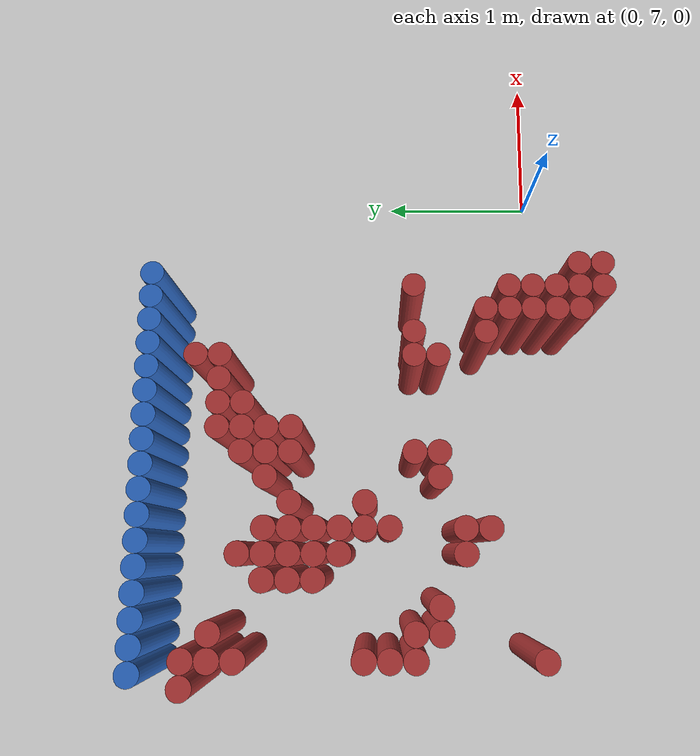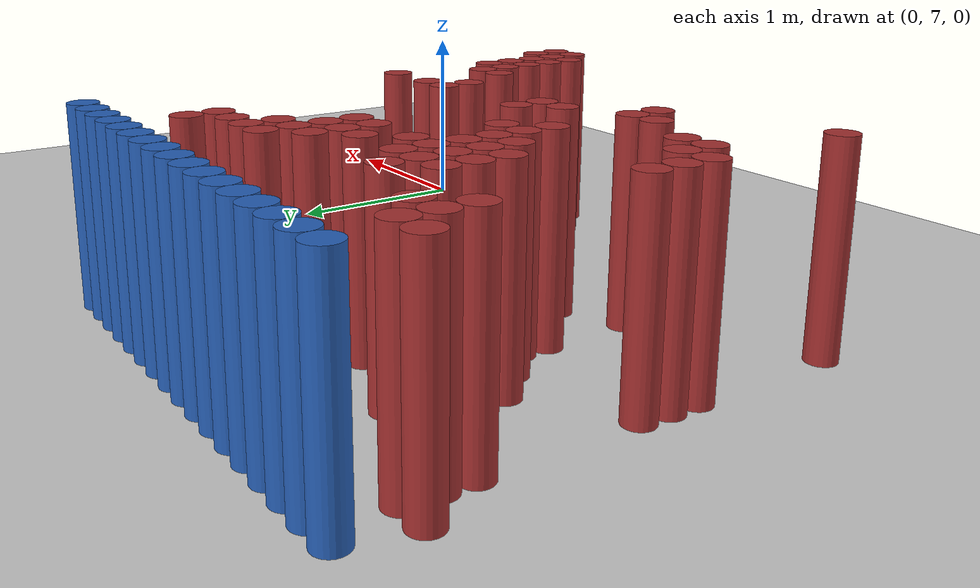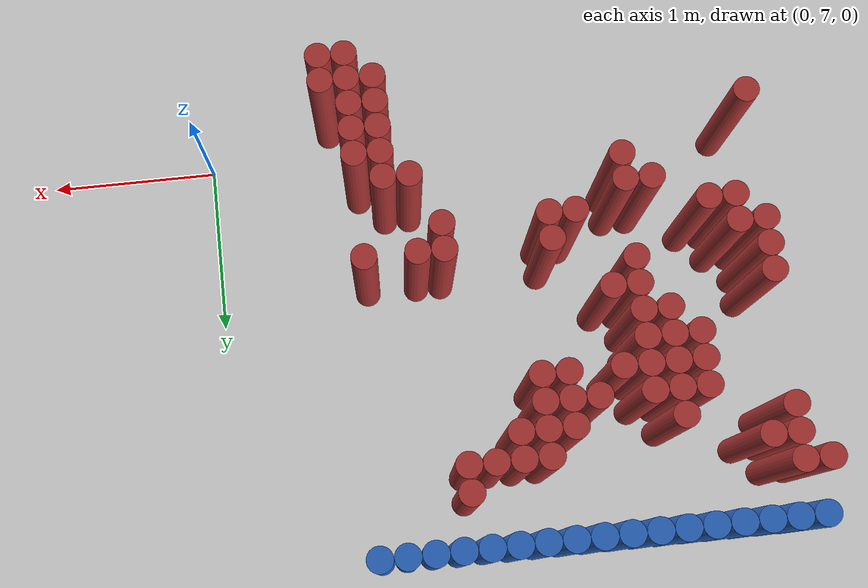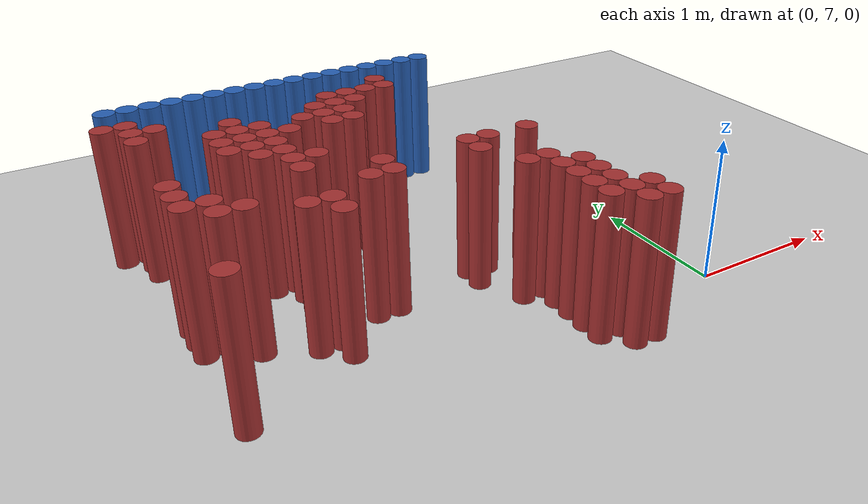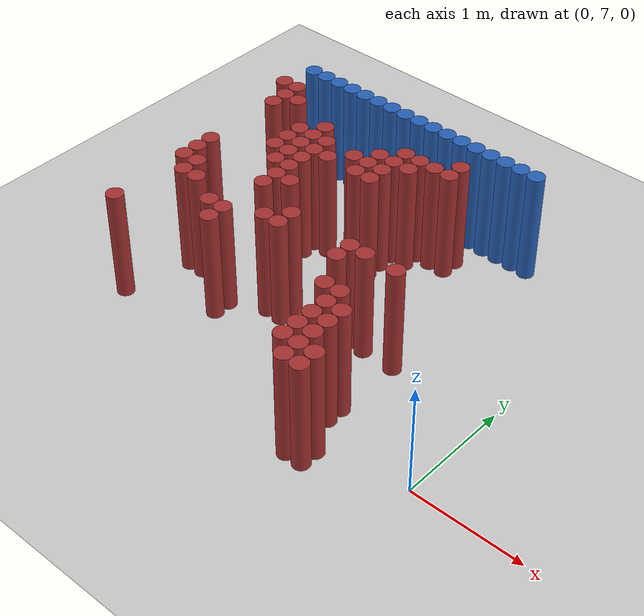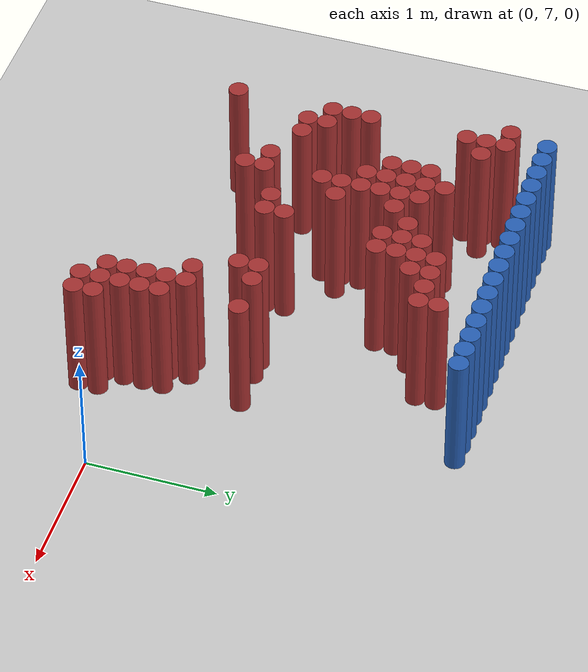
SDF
<sdf version="1.6">
 <world name="barn_world">
  <model name="ground_plane">
   <static>1</static>
   <link name="link">
    <collision name="collision">
     <geometry><plane><normal>0 0 1</normal><size>100 100</size></plane></geometry>
    </collision>
    <visual name="visual">
     <geometry><plane><normal>0 0 1</normal><size>100 100</size></plane></geometry>
     <material>
      <script><uri>file://media/materials/scripts/gazebo.material</uri><name>Gazebo/Grey</name></script>
     </material>
    </visual>
   </link>
  </model>
  <model name="unit_cylinder_218">
   <static>1</static>
   <pose>-3.3000 9.2250 0.5 0 0 0</pose>
   <link name="link">
    <collision name="collision">
     <geometry><cylinder><radius>0.075</radius><length>1</length></cylinder></geometry>
    </collision>
    <visual name="visual">
     <geometry><cylinder><radius>0.075</radius><length>1</length></cylinder></geometry>
     <material><ambient>0.648 0.192 0.192 1</ambient><diffuse>0.648 0.192 0.192 1</diffuse></material>
    </visual>
   </link>
  </model>
  <model name="unit_cylinder_219">
   <static>1</static>
   <pose>-3.1500 7.1250 0.5 0 0 0</pose>
   <link name="link">
    <collision name="collision">
     <geometry><cylinder><radius>0.075</radius><length>1</length></cylinder></geometry>
    </collision>
    <visual name="visual">
     <geometry><cylinder><radius>0.075</radius><length>1</length></cylinder></geometry>
     <material><ambient>0.648 0.192 0.192 1</ambient><diffuse>0.648 0.192 0.192 1</diffuse></material>
    </visual>
   </link>
  </model>
  <model name="unit_cylinder_220">
   <static>1</static>
   <pose>-3.1500 7.8750 0.5 0 0 0</pose>
   <link name="link">
    <collision name="collision">
     <geometry><cylinder><radius>0.075</radius><length>1</length></cylinder></geometry>
    </collision>
    <visual name="visual">
     <geometry><cylinder><radius>0.075</radius><length>1</length></cylinder></geometry>
     <material><ambient>0.648 0.192 0.192 1</ambient><diffuse>0.648 0.192 0.192 1</diffuse></material>
    </visual>
   </link>
  </model>
  <model name="unit_cylinder_221">
   <static>1</static>
   <pose>-3.1500 8.0250 0.5 0 0 0</pose>
   <link name="link">
    <collision name="collision">
     <geometry><cylinder><radius>0.075</radius><length>1</length></cylinder></geometry>
    </collision>
    <visual name="visual">
     <geometry><cylinder><radius>0.075</radius><length>1</length></cylinder></geometry>
     <material><ambient>0.648 0.192 0.192 1</ambient><diffuse>0.648 0.192 0.192 1</diffuse></material>
    </visual>
   </link>
  </model>
  <model name="unit_cylinder_222">
   <static>1</static>
   <pose>-3.1500 8.1750 0.5 0 0 0</pose>
   <link name="link">
    <collision name="collision">
     <geometry><cylinder><radius>0.075</radius><length>1</length></cylinder></geometry>
    </collision>
    <visual name="visual">
     <geometry><cylinder><radius>0.075</radius><length>1</length></cylinder></geometry>
     <material><ambient>0.648 0.192 0.192 1</ambient><diffuse>0.648 0.192 0.192 1</diffuse></material>
    </visual>
   </link>
  </model>
  <model name="unit_cylinder_223">
   <static>1</static>
   <pose>-3.1500 8.9250 0.5 0 0 0</pose>
   <link name="link">
    <collision name="collision">
     <geometry><cylinder><radius>0.075</radius><length>1</length></cylinder></geometry>
    </collision>
    <visual name="visual">
     <geometry><cylinder><radius>0.075</radius><length>1</length></cylinder></geometry>
     <material><ambient>0.648 0.192 0.192 1</ambient><diffuse>0.648 0.192 0.192 1</diffuse></material>
    </visual>
   </link>
  </model>
  <model name="unit_cylinder_224">
   <static>1</static>
   <pose>-3.1500 9.0750 0.5 0 0 0</pose>
   <link name="link">
    <collision name="collision">
     <geometry><cylinder><radius>0.075</radius><length>1</length></cylinder></geometry>
    </collision>
    <visual name="visual">
     <geometry><cylinder><radius>0.075</radius><length>1</length></cylinder></geometry>
     <material><ambient>0.648 0.192 0.192 1</ambient><diffuse>0.648 0.192 0.192 1</diffuse></material>
    </visual>
   </link>
  </model>
  <model name="unit_cylinder_225">
   <static>1</static>
   <pose>-3.1500 9.2250 0.5 0 0 0</pose>
   <link name="link">
    <collision name="collision">
     <geometry><cylinder><radius>0.075</radius><length>1</length></cylinder></geometry>
    </collision>
    <visual name="visual">
     <geometry><cylinder><radius>0.075</radius><length>1</length></cylinder></geometry>
     <material><ambient>0.648 0.192 0.192 1</ambient><diffuse>0.648 0.192 0.192 1</diffuse></material>
    </visual>
   </link>
  </model>
  <model name="unit_cylinder_229">
   <static>1</static>
   <pose>-3.0000 7.7250 0.5 0 0 0</pose>
   <link name="link">
    <collision name="collision">
     <geometry><cylinder><radius>0.075</radius><length>1</length></cylinder></geometry>
    </collision>
    <visual name="visual">
     <geometry><cylinder><radius>0.075</radius><length>1</length></cylinder></geometry>
     <material><ambient>0.648 0.192 0.192 1</ambient><diffuse>0.648 0.192 0.192 1</diffuse></material>
    </visual>
   </link>
  </model>
  <model name="unit_cylinder_230">
   <static>1</static>
   <pose>-3.0000 7.8750 0.5 0 0 0</pose>
   <link name="link">
    <collision name="collision">
     <geometry><cylinder><radius>0.075</radius><length>1</length></cylinder></geometry>
    </collision>
    <visual name="visual">
     <geometry><cylinder><radius>0.075</radius><length>1</length></cylinder></geometry>
     <material><ambient>0.648 0.192 0.192 1</ambient><diffuse>0.648 0.192 0.192 1</diffuse></material>
    </visual>
   </link>
  </model>
  <model name="unit_cylinder_231">
   <static>1</static>
   <pose>-3.0000 9.0750 0.5 0 0 0</pose>
   <link name="link">
    <collision name="collision">
     <geometry><cylinder><radius>0.075</radius><length>1</length></cylinder></geometry>
    </collision>
    <visual name="visual">
     <geometry><cylinder><radius>0.075</radius><length>1</length></cylinder></geometry>
     <material><ambient>0.648 0.192 0.192 1</ambient><diffuse>0.648 0.192 0.192 1</diffuse></material>
    </visual>
   </link>
  </model>
  <model name="unit_cylinder_237">
   <static>1</static>
   <pose>-2.8500 7.7250 0.5 0 0 0</pose>
   <link name="link">
    <collision name="collision">
     <geometry><cylinder><radius>0.075</radius><length>1</length></cylinder></geometry>
    </collision>
    <visual name="visual">
     <geometry><cylinder><radius>0.075</radius><length>1</length></cylinder></geometry>
     <material><ambient>0.648 0.192 0.192 1</ambient><diffuse>0.648 0.192 0.192 1</diffuse></material>
    </visual>
   </link>
  </model>
  <model name="unit_cylinder_242">
   <static>1</static>
   <pose>-2.7000 8.4750 0.5 0 0 0</pose>
   <link name="link">
    <collision name="collision">
     <geometry><cylinder><radius>0.075</radius><length>1</length></cylinder></geometry>
    </collision>
    <visual name="visual">
     <geometry><cylinder><radius>0.075</radius><length>1</length></cylinder></geometry>
     <material><ambient>0.648 0.192 0.192 1</ambient><diffuse>0.648 0.192 0.192 1</diffuse></material>
    </visual>
   </link>
  </model>
  <model name="unit_cylinder_243">
   <static>1</static>
   <pose>-2.7000 8.6250 0.5 0 0 0</pose>
   <link name="link">
    <collision name="collision">
     <geometry><cylinder><radius>0.075</radius><length>1</length></cylinder></geometry>
    </collision>
    <visual name="visual">
     <geometry><cylinder><radius>0.075</radius><length>1</length></cylinder></geometry>
     <material><ambient>0.648 0.192 0.192 1</ambient><diffuse>0.648 0.192 0.192 1</diffuse></material>
    </visual>
   </link>
  </model>
  <model name="unit_cylinder_244">
   <static>1</static>
   <pose>-2.7000 8.7750 0.5 0 0 0</pose>
   <link name="link">
    <collision name="collision">
     <geometry><cylinder><radius>0.075</radius><length>1</length></cylinder></geometry>
    </collision>
    <visual name="visual">
     <geometry><cylinder><radius>0.075</radius><length>1</length></cylinder></geometry>
     <material><ambient>0.648 0.192 0.192 1</ambient><diffuse>0.648 0.192 0.192 1</diffuse></material>
    </visual>
   </link>
  </model>
  <model name="unit_cylinder_248">
   <static>1</static>
   <pose>-2.5500 7.5750 0.5 0 0 0</pose>
   <link name="link">
    <collision name="collision">
     <geometry><cylinder><radius>0.075</radius><length>1</length></cylinder></geometry>
    </collision>
    <visual name="visual">
     <geometry><cylinder><radius>0.075</radius><length>1</length></cylinder></geometry>
     <material><ambient>0.648 0.192 0.192 1</ambient><diffuse>0.648 0.192 0.192 1</diffuse></material>
    </visual>
   </link>
  </model>
  <model name="unit_cylinder_249">
   <static>1</static>
   <pose>-2.5500 8.3250 0.5 0 0 0</pose>
   <link name="link">
    <collision name="collision">
     <geometry><cylinder><radius>0.075</radius><length>1</length></cylinder></geometry>
    </collision>
    <visual name="visual">
     <geometry><cylinder><radius>0.075</radius><length>1</length></cylinder></geometry>
     <material><ambient>0.648 0.192 0.192 1</ambient><diffuse>0.648 0.192 0.192 1</diffuse></material>
    </visual>
   </link>
  </model>
  <model name="unit_cylinder_250">
   <static>1</static>
   <pose>-2.5500 8.4750 0.5 0 0 0</pose>
   <link name="link">
    <collision name="collision">
     <geometry><cylinder><radius>0.075</radius><length>1</length></cylinder></geometry>
    </collision>
    <visual name="visual">
     <geometry><cylinder><radius>0.075</radius><length>1</length></cylinder></geometry>
     <material><ambient>0.648 0.192 0.192 1</ambient><diffuse>0.648 0.192 0.192 1</diffuse></material>
    </visual>
   </link>
  </model>
  <model name="unit_cylinder_251">
   <static>1</static>
   <pose>-2.5500 8.6250 0.5 0 0 0</pose>
   <link name="link">
    <collision name="collision">
     <geometry><cylinder><radius>0.075</radius><length>1</length></cylinder></geometry>
    </collision>
    <visual name="visual">
     <geometry><cylinder><radius>0.075</radius><length>1</length></cylinder></geometry>
     <material><ambient>0.648 0.192 0.192 1</ambient><diffuse>0.648 0.192 0.192 1</diffuse></material>
    </visual>
   </link>
  </model>
  <model name="unit_cylinder_252">
   <static>1</static>
   <pose>-2.5500 8.7750 0.5 0 0 0</pose>
   <link name="link">
    <collision name="collision">
     <geometry><cylinder><radius>0.075</radius><length>1</length></cylinder></geometry>
    </collision>
    <visual name="visual">
     <geometry><cylinder><radius>0.075</radius><length>1</length></cylinder></geometry>
     <material><ambient>0.648 0.192 0.192 1</ambient><diffuse>0.648 0.192 0.192 1</diffuse></material>
    </visual>
   </link>
  </model>
  <model name="unit_cylinder_253">
   <static>1</static>
   <pose>-2.5500 8.9250 0.5 0 0 0</pose>
   <link name="link">
    <collision name="collision">
     <geometry><cylinder><radius>0.075</radius><length>1</length></cylinder></geometry>
    </collision>
    <visual name="visual">
     <geometry><cylinder><radius>0.075</radius><length>1</length></cylinder></geometry>
     <material><ambient>0.648 0.192 0.192 1</ambient><diffuse>0.648 0.192 0.192 1</diffuse></material>
    </visual>
   </link>
  </model>
  <model name="unit_cylinder_256">
   <static>1</static>
   <pose>-2.4000 7.4250 0.5 0 0 0</pose>
   <link name="link">
    <collision name="collision">
     <geometry><cylinder><radius>0.075</radius><length>1</length></cylinder></geometry>
    </collision>
    <visual name="visual">
     <geometry><cylinder><radius>0.075</radius><length>1</length></cylinder></geometry>
     <material><ambient>0.648 0.192 0.192 1</ambient><diffuse>0.648 0.192 0.192 1</diffuse></material>
    </visual>
   </link>
  </model>
  <model name="unit_cylinder_257">
   <static>1</static>
   <pose>-2.4000 7.5750 0.5 0 0 0</pose>
   <link name="link">
    <collision name="collision">
     <geometry><cylinder><radius>0.075</radius><length>1</length></cylinder></geometry>
    </collision>
    <visual name="visual">
     <geometry><cylinder><radius>0.075</radius><length>1</length></cylinder></geometry>
     <material><ambient>0.648 0.192 0.192 1</ambient><diffuse>0.648 0.192 0.192 1</diffuse></material>
    </visual>
   </link>
  </model>
  <model name="unit_cylinder_258">
   <static>1</static>
   <pose>-2.4000 8.0250 0.5 0 0 0</pose>
   <link name="link">
    <collision name="collision">
     <geometry><cylinder><radius>0.075</radius><length>1</length></cylinder></geometry>
    </collision>
    <visual name="visual">
     <geometry><cylinder><radius>0.075</radius><length>1</length></cylinder></geometry>
     <material><ambient>0.648 0.192 0.192 1</ambient><diffuse>0.648 0.192 0.192 1</diffuse></material>
    </visual>
   </link>
  </model>
  <model name="unit_cylinder_259">
   <static>1</static>
   <pose>-2.4000 8.1750 0.5 0 0 0</pose>
   <link name="link">
    <collision name="collision">
     <geometry><cylinder><radius>0.075</radius><length>1</length></cylinder></geometry>
    </collision>
    <visual name="visual">
     <geometry><cylinder><radius>0.075</radius><length>1</length></cylinder></geometry>
     <material><ambient>0.648 0.192 0.192 1</ambient><diffuse>0.648 0.192 0.192 1</diffuse></material>
    </visual>
   </link>
  </model>
  <model name="unit_cylinder_260">
   <static>1</static>
   <pose>-2.4000 8.3250 0.5 0 0 0</pose>
   <link name="link">
    <collision name="collision">
     <geometry><cylinder><radius>0.075</radius><length>1</length></cylinder></geometry>
    </collision>
    <visual name="visual">
     <geometry><cylinder><radius>0.075</radius><length>1</length></cylinder></geometry>
     <material><ambient>0.648 0.192 0.192 1</ambient><diffuse>0.648 0.192 0.192 1</diffuse></material>
    </visual>
   </link>
  </model>
  <model name="unit_cylinder_261">
   <static>1</static>
   <pose>-2.4000 8.4750 0.5 0 0 0</pose>
   <link name="link">
    <collision name="collision">
     <geometry><cylinder><radius>0.075</radius><length>1</length></cylinder></geometry>
    </collision>
    <visual name="visual">
     <geometry><cylinder><radius>0.075</radius><length>1</length></cylinder></geometry>
     <material><ambient>0.648 0.192 0.192 1</ambient><diffuse>0.648 0.192 0.192 1</diffuse></material>
    </visual>
   </link>
  </model>
  <model name="unit_cylinder_262">
   <static>1</static>
   <pose>-2.4000 8.6250 0.5 0 0 0</pose>
   <link name="link">
    <collision name="collision">
     <geometry><cylinder><radius>0.075</radius><length>1</length></cylinder></geometry>
    </collision>
    <visual name="visual">
     <geometry><cylinder><radius>0.075</radius><length>1</length></cylinder></geometry>
     <material><ambient>0.648 0.192 0.192 1</ambient><diffuse>0.648 0.192 0.192 1</diffuse></material>
    </visual>
   </link>
  </model>
  <model name="unit_cylinder_263">
   <static>1</static>
   <pose>-2.4000 8.7750 0.5 0 0 0</pose>
   <link name="link">
    <collision name="collision">
     <geometry><cylinder><radius>0.075</radius><length>1</length></cylinder></geometry>
    </collision>
    <visual name="visual">
     <geometry><cylinder><radius>0.075</radius><length>1</length></cylinder></geometry>
     <material><ambient>0.648 0.192 0.192 1</ambient><diffuse>0.648 0.192 0.192 1</diffuse></material>
    </visual>
   </link>
  </model>
  <model name="unit_cylinder_265">
   <static>1</static>
   <pose>-2.2500 8.1750 0.5 0 0 0</pose>
   <link name="link">
    <collision name="collision">
     <geometry><cylinder><radius>0.075</radius><length>1</length></cylinder></geometry>
    </collision>
    <visual name="visual">
     <geometry><cylinder><radius>0.075</radius><length>1</length></cylinder></geometry>
     <material><ambient>0.648 0.192 0.192 1</ambient><diffuse>0.648 0.192 0.192 1</diffuse></material>
    </visual>
   </link>
  </model>
  <model name="unit_cylinder_266">
   <static>1</static>
   <pose>-2.2500 8.6250 0.5 0 0 0</pose>
   <link name="link">
    <collision name="collision">
     <geometry><cylinder><radius>0.075</radius><length>1</length></cylinder></geometry>
    </collision>
    <visual name="visual">
     <geometry><cylinder><radius>0.075</radius><length>1</length></cylinder></geometry>
     <material><ambient>0.648 0.192 0.192 1</ambient><diffuse>0.648 0.192 0.192 1</diffuse></material>
    </visual>
   </link>
  </model>
  <model name="unit_cylinder_269">
   <static>1</static>
   <pose>-2.1000 7.7250 0.5 0 0 0</pose>
   <link name="link">
    <collision name="collision">
     <geometry><cylinder><radius>0.075</radius><length>1</length></cylinder></geometry>
    </collision>
    <visual name="visual">
     <geometry><cylinder><radius>0.075</radius><length>1</length></cylinder></geometry>
     <material><ambient>0.648 0.192 0.192 1</ambient><diffuse>0.648 0.192 0.192 1</diffuse></material>
    </visual>
   </link>
  </model>
  <model name="unit_cylinder_270">
   <static>1</static>
   <pose>-2.1000 8.7750 0.5 0 0 0</pose>
   <link name="link">
    <collision name="collision">
     <geometry><cylinder><radius>0.075</radius><length>1</length></cylinder></geometry>
    </collision>
    <visual name="visual">
     <geometry><cylinder><radius>0.075</radius><length>1</length></cylinder></geometry>
     <material><ambient>0.648 0.192 0.192 1</ambient><diffuse>0.648 0.192 0.192 1</diffuse></material>
    </visual>
   </link>
  </model>
  <model name="unit_cylinder_272">
   <static>1</static>
   <pose>-1.9500 7.7250 0.5 0 0 0</pose>
   <link name="link">
    <collision name="collision">
     <geometry><cylinder><radius>0.075</radius><length>1</length></cylinder></geometry>
    </collision>
    <visual name="visual">
     <geometry><cylinder><radius>0.075</radius><length>1</length></cylinder></geometry>
     <material><ambient>0.648 0.192 0.192 1</ambient><diffuse>0.648 0.192 0.192 1</diffuse></material>
    </visual>
   </link>
  </model>
  <model name="unit_cylinder_273">
   <static>1</static>
   <pose>-1.9500 7.8750 0.5 0 0 0</pose>
   <link name="link">
    <collision name="collision">
     <geometry><cylinder><radius>0.075</radius><length>1</length></cylinder></geometry>
    </collision>
    <visual name="visual">
     <geometry><cylinder><radius>0.075</radius><length>1</length></cylinder></geometry>
     <material><ambient>0.648 0.192 0.192 1</ambient><diffuse>0.648 0.192 0.192 1</diffuse></material>
    </visual>
   </link>
  </model>
  <model name="unit_cylinder_274">
   <static>1</static>
   <pose>-1.9500 8.6250 0.5 0 0 0</pose>
   <link name="link">
    <collision name="collision">
     <geometry><cylinder><radius>0.075</radius><length>1</length></cylinder></geometry>
    </collision>
    <visual name="visual">
     <geometry><cylinder><radius>0.075</radius><length>1</length></cylinder></geometry>
     <material><ambient>0.648 0.192 0.192 1</ambient><diffuse>0.648 0.192 0.192 1</diffuse></material>
    </visual>
   </link>
  </model>
  <model name="unit_cylinder_275">
   <static>1</static>
   <pose>-1.9500 8.7750 0.5 0 0 0</pose>
   <link name="link">
    <collision name="collision">
     <geometry><cylinder><radius>0.075</radius><length>1</length></cylinder></geometry>
    </collision>
    <visual name="visual">
     <geometry><cylinder><radius>0.075</radius><length>1</length></cylinder></geometry>
     <material><ambient>0.648 0.192 0.192 1</ambient><diffuse>0.648 0.192 0.192 1</diffuse></material>
    </visual>
   </link>
  </model>
  <model name="unit_cylinder_276">
   <static>1</static>
   <pose>-1.9500 8.9250 0.5 0 0 0</pose>
   <link name="link">
    <collision name="collision">
     <geometry><cylinder><radius>0.075</radius><length>1</length></cylinder></geometry>
    </collision>
    <visual name="visual">
     <geometry><cylinder><radius>0.075</radius><length>1</length></cylinder></geometry>
     <material><ambient>0.648 0.192 0.192 1</ambient><diffuse>0.648 0.192 0.192 1</diffuse></material>
    </visual>
   </link>
  </model>
  <model name="unit_cylinder_279">
   <static>1</static>
   <pose>-1.8000 8.6250 0.5 0 0 0</pose>
   <link name="link">
    <collision name="collision">
     <geometry><cylinder><radius>0.075</radius><length>1</length></cylinder></geometry>
    </collision>
    <visual name="visual">
     <geometry><cylinder><radius>0.075</radius><length>1</length></cylinder></geometry>
     <material><ambient>0.648 0.192 0.192 1</ambient><diffuse>0.648 0.192 0.192 1</diffuse></material>
    </visual>
   </link>
  </model>
  <model name="unit_cylinder_280">
   <static>1</static>
   <pose>-1.8000 8.7750 0.5 0 0 0</pose>
   <link name="link">
    <collision name="collision">
     <geometry><cylinder><radius>0.075</radius><length>1</length></cylinder></geometry>
    </collision>
    <visual name="visual">
     <geometry><cylinder><radius>0.075</radius><length>1</length></cylinder></geometry>
     <material><ambient>0.648 0.192 0.192 1</ambient><diffuse>0.648 0.192 0.192 1</diffuse></material>
    </visual>
   </link>
  </model>
  <model name="unit_cylinder_281">
   <static>1</static>
   <pose>-1.8000 8.9250 0.5 0 0 0</pose>
   <link name="link">
    <collision name="collision">
     <geometry><cylinder><radius>0.075</radius><length>1</length></cylinder></geometry>
    </collision>
    <visual name="visual">
     <geometry><cylinder><radius>0.075</radius><length>1</length></cylinder></geometry>
     <material><ambient>0.648 0.192 0.192 1</ambient><diffuse>0.648 0.192 0.192 1</diffuse></material>
    </visual>
   </link>
  </model>
  <model name="unit_cylinder_282">
   <static>1</static>
   <pose>-1.8000 9.0750 0.5 0 0 0</pose>
   <link name="link">
    <collision name="collision">
     <geometry><cylinder><radius>0.075</radius><length>1</length></cylinder></geometry>
    </collision>
    <visual name="visual">
     <geometry><cylinder><radius>0.075</radius><length>1</length></cylinder></geometry>
     <material><ambient>0.648 0.192 0.192 1</ambient><diffuse>0.648 0.192 0.192 1</diffuse></material>
    </visual>
   </link>
  </model>
  <model name="unit_cylinder_283">
   <static>1</static>
   <pose>-1.6500 8.9250 0.5 0 0 0</pose>
   <link name="link">
    <collision name="collision">
     <geometry><cylinder><radius>0.075</radius><length>1</length></cylinder></geometry>
    </collision>
    <visual name="visual">
     <geometry><cylinder><radius>0.075</radius><length>1</length></cylinder></geometry>
     <material><ambient>0.648 0.192 0.192 1</ambient><diffuse>0.648 0.192 0.192 1</diffuse></material>
    </visual>
   </link>
  </model>
  <model name="unit_cylinder_284">
   <static>1</static>
   <pose>-1.6500 9.0750 0.5 0 0 0</pose>
   <link name="link">
    <collision name="collision">
     <geometry><cylinder><radius>0.075</radius><length>1</length></cylinder></geometry>
    </collision>
    <visual name="visual">
     <geometry><cylinder><radius>0.075</radius><length>1</length></cylinder></geometry>
     <material><ambient>0.648 0.192 0.192 1</ambient><diffuse>0.648 0.192 0.192 1</diffuse></material>
    </visual>
   </link>
  </model>
  <model name="unit_cylinder_285">
   <static>1</static>
   <pose>-1.5000 9.0750 0.5 0 0 0</pose>
   <link name="link">
    <collision name="collision">
     <geometry><cylinder><radius>0.075</radius><length>1</length></cylinder></geometry>
    </collision>
    <visual name="visual">
     <geometry><cylinder><radius>0.075</radius><length>1</length></cylinder></geometry>
     <material><ambient>0.648 0.192 0.192 1</ambient><diffuse>0.648 0.192 0.192 1</diffuse></material>
    </visual>
   </link>
  </model>
  <model name="unit_cylinder_286">
   <static>1</static>
   <pose>-1.3500 7.7250 0.5 0 0 0</pose>
   <link name="link">
    <collision name="collision">
     <geometry><cylinder><radius>0.075</radius><length>1</length></cylinder></geometry>
    </collision>
    <visual name="visual">
     <geometry><cylinder><radius>0.075</radius><length>1</length></cylinder></geometry>
     <material><ambient>0.648 0.192 0.192 1</ambient><diffuse>0.648 0.192 0.192 1</diffuse></material>
    </visual>
   </link>
  </model>
  <model name="unit_cylinder_287">
   <static>1</static>
   <pose>-1.3500 7.8750 0.5 0 0 0</pose>
   <link name="link">
    <collision name="collision">
     <geometry><cylinder><radius>0.075</radius><length>1</length></cylinder></geometry>
    </collision>
    <visual name="visual">
     <geometry><cylinder><radius>0.075</radius><length>1</length></cylinder></geometry>
     <material><ambient>0.648 0.192 0.192 1</ambient><diffuse>0.648 0.192 0.192 1</diffuse></material>
    </visual>
   </link>
  </model>
  <model name="unit_cylinder_288">
   <static>1</static>
   <pose>-1.3500 9.0750 0.5 0 0 0</pose>
   <link name="link">
    <collision name="collision">
     <geometry><cylinder><radius>0.075</radius><length>1</length></cylinder></geometry>
    </collision>
    <visual name="visual">
     <geometry><cylinder><radius>0.075</radius><length>1</length></cylinder></geometry>
     <material><ambient>0.648 0.192 0.192 1</ambient><diffuse>0.648 0.192 0.192 1</diffuse></material>
    </visual>
   </link>
  </model>
  <model name="unit_cylinder_289">
   <static>1</static>
   <pose>-1.3500 9.2250 0.5 0 0 0</pose>
   <link name="link">
    <collision name="collision">
     <geometry><cylinder><radius>0.075</radius><length>1</length></cylinder></geometry>
    </collision>
    <visual name="visual">
     <geometry><cylinder><radius>0.075</radius><length>1</length></cylinder></geometry>
     <material><ambient>0.648 0.192 0.192 1</ambient><diffuse>0.648 0.192 0.192 1</diffuse></material>
    </visual>
   </link>
  </model>
  <model name="unit_cylinder_292">
   <static>1</static>
   <pose>-1.2000 7.4250 0.5 0 0 0</pose>
   <link name="link">
    <collision name="collision">
     <geometry><cylinder><radius>0.075</radius><length>1</length></cylinder></geometry>
    </collision>
    <visual name="visual">
     <geometry><cylinder><radius>0.075</radius><length>1</length></cylinder></geometry>
     <material><ambient>0.648 0.192 0.192 1</ambient><diffuse>0.648 0.192 0.192 1</diffuse></material>
    </visual>
   </link>
  </model>
  <model name="unit_cylinder_293">
   <static>1</static>
   <pose>-1.2000 7.8750 0.5 0 0 0</pose>
   <link name="link">
    <collision name="collision">
     <geometry><cylinder><radius>0.075</radius><length>1</length></cylinder></geometry>
    </collision>
    <visual name="visual">
     <geometry><cylinder><radius>0.075</radius><length>1</length></cylinder></geometry>
     <material><ambient>0.648 0.192 0.192 1</ambient><diffuse>0.648 0.192 0.192 1</diffuse></material>
    </visual>
   </link>
  </model>
  <model name="unit_cylinder_300">
   <static>1</static>
   <pose>-1.0500 6.8250 0.5 0 0 0</pose>
   <link name="link">
    <collision name="collision">
     <geometry><cylinder><radius>0.075</radius><length>1</length></cylinder></geometry>
    </collision>
    <visual name="visual">
     <geometry><cylinder><radius>0.075</radius><length>1</length></cylinder></geometry>
     <material><ambient>0.648 0.192 0.192 1</ambient><diffuse>0.648 0.192 0.192 1</diffuse></material>
    </visual>
   </link>
  </model>
  <model name="unit_cylinder_301">
   <static>1</static>
   <pose>-1.0500 6.9750 0.5 0 0 0</pose>
   <link name="link">
    <collision name="collision">
     <geometry><cylinder><radius>0.075</radius><length>1</length></cylinder></geometry>
    </collision>
    <visual name="visual">
     <geometry><cylinder><radius>0.075</radius><length>1</length></cylinder></geometry>
     <material><ambient>0.648 0.192 0.192 1</ambient><diffuse>0.648 0.192 0.192 1</diffuse></material>
    </visual>
   </link>
  </model>
  <model name="unit_cylinder_302">
   <static>1</static>
   <pose>-1.0500 7.1250 0.5 0 0 0</pose>
   <link name="link">
    <collision name="collision">
     <geometry><cylinder><radius>0.075</radius><length>1</length></cylinder></geometry>
    </collision>
    <visual name="visual">
     <geometry><cylinder><radius>0.075</radius><length>1</length></cylinder></geometry>
     <material><ambient>0.648 0.192 0.192 1</ambient><diffuse>0.648 0.192 0.192 1</diffuse></material>
    </visual>
   </link>
  </model>
  <model name="unit_cylinder_303">
   <static>1</static>
   <pose>-1.0500 7.2750 0.5 0 0 0</pose>
   <link name="link">
    <collision name="collision">
     <geometry><cylinder><radius>0.075</radius><length>1</length></cylinder></geometry>
    </collision>
    <visual name="visual">
     <geometry><cylinder><radius>0.075</radius><length>1</length></cylinder></geometry>
     <material><ambient>0.648 0.192 0.192 1</ambient><diffuse>0.648 0.192 0.192 1</diffuse></material>
    </visual>
   </link>
  </model>
  <model name="unit_cylinder_304">
   <static>1</static>
   <pose>-1.0500 7.4250 0.5 0 0 0</pose>
   <link name="link">
    <collision name="collision">
     <geometry><cylinder><radius>0.075</radius><length>1</length></cylinder></geometry>
    </collision>
    <visual name="visual">
     <geometry><cylinder><radius>0.075</radius><length>1</length></cylinder></geometry>
     <material><ambient>0.648 0.192 0.192 1</ambient><diffuse>0.648 0.192 0.192 1</diffuse></material>
    </visual>
   </link>
  </model>
  <model name="unit_cylinder_308">
   <static>1</static>
   <pose>-0.9000 6.6750 0.5 0 0 0</pose>
   <link name="link">
    <collision name="collision">
     <geometry><cylinder><radius>0.075</radius><length>1</length></cylinder></geometry>
    </collision>
    <visual name="visual">
     <geometry><cylinder><radius>0.075</radius><length>1</length></cylinder></geometry>
     <material><ambient>0.648 0.192 0.192 1</ambient><diffuse>0.648 0.192 0.192 1</diffuse></material>
    </visual>
   </link>
  </model>
  <model name="unit_cylinder_309">
   <static>1</static>
   <pose>-0.9000 6.8250 0.5 0 0 0</pose>
   <link name="link">
    <collision name="collision">
     <geometry><cylinder><radius>0.075</radius><length>1</length></cylinder></geometry>
    </collision>
    <visual name="visual">
     <geometry><cylinder><radius>0.075</radius><length>1</length></cylinder></geometry>
     <material><ambient>0.648 0.192 0.192 1</ambient><diffuse>0.648 0.192 0.192 1</diffuse></material>
    </visual>
   </link>
  </model>
  <model name="unit_cylinder_310">
   <static>1</static>
   <pose>-0.9000 6.9750 0.5 0 0 0</pose>
   <link name="link">
    <collision name="collision">
     <geometry><cylinder><radius>0.075</radius><length>1</length></cylinder></geometry>
    </collision>
    <visual name="visual">
     <geometry><cylinder><radius>0.075</radius><length>1</length></cylinder></geometry>
     <material><ambient>0.648 0.192 0.192 1</ambient><diffuse>0.648 0.192 0.192 1</diffuse></material>
    </visual>
   </link>
  </model>
  <model name="unit_cylinder_311">
   <static>1</static>
   <pose>-0.9000 7.1250 0.5 0 0 0</pose>
   <link name="link">
    <collision name="collision">
     <geometry><cylinder><radius>0.075</radius><length>1</length></cylinder></geometry>
    </collision>
    <visual name="visual">
     <geometry><cylinder><radius>0.075</radius><length>1</length></cylinder></geometry>
     <material><ambient>0.648 0.192 0.192 1</ambient><diffuse>0.648 0.192 0.192 1</diffuse></material>
    </visual>
   </link>
  </model>
  <model name="unit_cylinder_312">
   <static>1</static>
   <pose>-0.9000 7.2750 0.5 0 0 0</pose>
   <link name="link">
    <collision name="collision">
     <geometry><cylinder><radius>0.075</radius><length>1</length></cylinder></geometry>
    </collision>
    <visual name="visual">
     <geometry><cylinder><radius>0.075</radius><length>1</length></cylinder></geometry>
     <material><ambient>0.648 0.192 0.192 1</ambient><diffuse>0.648 0.192 0.192 1</diffuse></material>
    </visual>
   </link>
  </model>
  <model name="unit_cylinder_313">
   <static>1</static>
   <pose>-0.9000 7.8750 0.5 0 0 0</pose>
   <link name="link">
    <collision name="collision">
     <geometry><cylinder><radius>0.075</radius><length>1</length></cylinder></geometry>
    </collision>
    <visual name="visual">
     <geometry><cylinder><radius>0.075</radius><length>1</length></cylinder></geometry>
     <material><ambient>0.648 0.192 0.192 1</ambient><diffuse>0.648 0.192 0.192 1</diffuse></material>
    </visual>
   </link>
  </model>
  <model name="unit_cylinder_314">
   <static>1</static>
   <pose>-0.7500 6.6750 0.5 0 0 0</pose>
   <link name="link">
    <collision name="collision">
     <geometry><cylinder><radius>0.075</radius><length>1</length></cylinder></geometry>
    </collision>
    <visual name="visual">
     <geometry><cylinder><radius>0.075</radius><length>1</length></cylinder></geometry>
     <material><ambient>0.648 0.192 0.192 1</ambient><diffuse>0.648 0.192 0.192 1</diffuse></material>
    </visual>
   </link>
  </model>
  <model name="unit_cylinder_315">
   <static>1</static>
   <pose>-0.7500 6.8250 0.5 0 0 0</pose>
   <link name="link">
    <collision name="collision">
     <geometry><cylinder><radius>0.075</radius><length>1</length></cylinder></geometry>
    </collision>
    <visual name="visual">
     <geometry><cylinder><radius>0.075</radius><length>1</length></cylinder></geometry>
     <material><ambient>0.648 0.192 0.192 1</ambient><diffuse>0.648 0.192 0.192 1</diffuse></material>
    </visual>
   </link>
  </model>
  <model name="unit_cylinder_404">
   <static>1</static>
   <pose>-0.8250 9.5250 0.5 0 0 0</pose>
   <link name="link">
    <collision name="collision">
     <geometry><cylinder><radius>0.075</radius><length>1</length></cylinder></geometry>
    </collision>
    <visual name="visual">
     <geometry><cylinder><radius>0.075</radius><length>1</length></cylinder></geometry>
     <material><ambient>0.152 0.379 0.72 1</ambient><diffuse>0.152 0.379 0.72 1</diffuse></material>
    </visual>
   </link>
  </model>
  <model name="unit_cylinder_405">
   <static>1</static>
   <pose>-0.9750 9.5250 0.5 0 0 0</pose>
   <link name="link">
    <collision name="collision">
     <geometry><cylinder><radius>0.075</radius><length>1</length></cylinder></geometry>
    </collision>
    <visual name="visual">
     <geometry><cylinder><radius>0.075</radius><length>1</length></cylinder></geometry>
     <material><ambient>0.152 0.379 0.72 1</ambient><diffuse>0.152 0.379 0.72 1</diffuse></material>
    </visual>
   </link>
  </model>
  <model name="unit_cylinder_406">
   <static>1</static>
   <pose>-1.1250 9.5250 0.5 0 0 0</pose>
   <link name="link">
    <collision name="collision">
     <geometry><cylinder><radius>0.075</radius><length>1</length></cylinder></geometry>
    </collision>
    <visual name="visual">
     <geometry><cylinder><radius>0.075</radius><length>1</length></cylinder></geometry>
     <material><ambient>0.152 0.379 0.72 1</ambient><diffuse>0.152 0.379 0.72 1</diffuse></material>
    </visual>
   </link>
  </model>
  <model name="unit_cylinder_407">
   <static>1</static>
   <pose>-1.2750 9.5250 0.5 0 0 0</pose>
   <link name="link">
    <collision name="collision">
     <geometry><cylinder><radius>0.075</radius><length>1</length></cylinder></geometry>
    </collision>
    <visual name="visual">
     <geometry><cylinder><radius>0.075</radius><length>1</length></cylinder></geometry>
     <material><ambient>0.152 0.379 0.72 1</ambient><diffuse>0.152 0.379 0.72 1</diffuse></material>
    </visual>
   </link>
  </model>
  <model name="unit_cylinder_408">
   <static>1</static>
   <pose>-1.4250 9.5250 0.5 0 0 0</pose>
   <link name="link">
    <collision name="collision">
     <geometry><cylinder><radius>0.075</radius><length>1</length></cylinder></geometry>
    </collision>
    <visual name="visual">
     <geometry><cylinder><radius>0.075</radius><length>1</length></cylinder></geometry>
     <material><ambient>0.152 0.379 0.72 1</ambient><diffuse>0.152 0.379 0.72 1</diffuse></material>
    </visual>
   </link>
  </model>
  <model name="unit_cylinder_409">
   <static>1</static>
   <pose>-1.5750 9.5250 0.5 0 0 0</pose>
   <link name="link">
    <collision name="collision">
     <geometry><cylinder><radius>0.075</radius><length>1</length></cylinder></geometry>
    </collision>
    <visual name="visual">
     <geometry><cylinder><radius>0.075</radius><length>1</length></cylinder></geometry>
     <material><ambient>0.152 0.379 0.72 1</ambient><diffuse>0.152 0.379 0.72 1</diffuse></material>
    </visual>
   </link>
  </model>
  <model name="unit_cylinder_410">
   <static>1</static>
   <pose>-1.7250 9.5250 0.5 0 0 0</pose>
   <link name="link">
    <collision name="collision">
     <geometry><cylinder><radius>0.075</radius><length>1</length></cylinder></geometry>
    </collision>
    <visual name="visual">
     <geometry><cylinder><radius>0.075</radius><length>1</length></cylinder></geometry>
     <material><ambient>0.152 0.379 0.72 1</ambient><diffuse>0.152 0.379 0.72 1</diffuse></material>
    </visual>
   </link>
  </model>
  <model name="unit_cylinder_411">
   <static>1</static>
   <pose>-1.8750 9.5250 0.5 0 0 0</pose>
   <link name="link">
    <collision name="collision">
     <geometry><cylinder><radius>0.075</radius><length>1</length></cylinder></geometry>
    </collision>
    <visual name="visual">
     <geometry><cylinder><radius>0.075</radius><length>1</length></cylinder></geometry>
     <material><ambient>0.152 0.379 0.72 1</ambient><diffuse>0.152 0.379 0.72 1</diffuse></material>
    </visual>
   </link>
  </model>
  <model name="unit_cylinder_412">
   <static>1</static>
   <pose>-2.0250 9.5250 0.5 0 0 0</pose>
   <link name="link">
    <collision name="collision">
     <geometry><cylinder><radius>0.075</radius><length>1</length></cylinder></geometry>
    </collision>
    <visual name="visual">
     <geometry><cylinder><radius>0.075</radius><length>1</length></cylinder></geometry>
     <material><ambient>0.152 0.379 0.72 1</ambient><diffuse>0.152 0.379 0.72 1</diffuse></material>
    </visual>
   </link>
  </model>
  <model name="unit_cylinder_413">
   <static>1</static>
   <pose>-2.1750 9.5250 0.5 0 0 0</pose>
   <link name="link">
    <collision name="collision">
     <geometry><cylinder><radius>0.075</radius><length>1</length></cylinder></geometry>
    </collision>
    <visual name="visual">
     <geometry><cylinder><radius>0.075</radius><length>1</length></cylinder></geometry>
     <material><ambient>0.152 0.379 0.72 1</ambient><diffuse>0.152 0.379 0.72 1</diffuse></material>
    </visual>
   </link>
  </model>
  <model name="unit_cylinder_414">
   <static>1</static>
   <pose>-2.3250 9.5250 0.5 0 0 0</pose>
   <link name="link">
    <collision name="collision">
     <geometry><cylinder><radius>0.075</radius><length>1</length></cylinder></geometry>
    </collision>
    <visual name="visual">
     <geometry><cylinder><radius>0.075</radius><length>1</length></cylinder></geometry>
     <material><ambient>0.152 0.379 0.72 1</ambient><diffuse>0.152 0.379 0.72 1</diffuse></material>
    </visual>
   </link>
  </model>
  <model name="unit_cylinder_415">
   <static>1</static>
   <pose>-2.4750 9.5250 0.5 0 0 0</pose>
   <link name="link">
    <collision name="collision">
     <geometry><cylinder><radius>0.075</radius><length>1</length></cylinder></geometry>
    </collision>
    <visual name="visual">
     <geometry><cylinder><radius>0.075</radius><length>1</length></cylinder></geometry>
     <material><ambient>0.152 0.379 0.72 1</ambient><diffuse>0.152 0.379 0.72 1</diffuse></material>
    </visual>
   </link>
  </model>
  <model name="unit_cylinder_416">
   <static>1</static>
   <pose>-2.6250 9.5250 0.5 0 0 0</pose>
   <link name="link">
    <collision name="collision">
     <geometry><cylinder><radius>0.075</radius><length>1</length></cylinder></geometry>
    </collision>
    <visual name="visual">
     <geometry><cylinder><radius>0.075</radius><length>1</length></cylinder></geometry>
     <material><ambient>0.152 0.379 0.72 1</ambient><diffuse>0.152 0.379 0.72 1</diffuse></material>
    </visual>
   </link>
  </model>
  <model name="unit_cylinder_417">
   <static>1</static>
   <pose>-2.7750 9.5250 0.5 0 0 0</pose>
   <link name="link">
    <collision name="collision">
     <geometry><cylinder><radius>0.075</radius><length>1</length></cylinder></geometry>
    </collision>
    <visual name="visual">
     <geometry><cylinder><radius>0.075</radius><length>1</length></cylinder></geometry>
     <material><ambient>0.152 0.379 0.72 1</ambient><diffuse>0.152 0.379 0.72 1</diffuse></material>
    </visual>
   </link>
  </model>
  <model name="unit_cylinder_418">
   <static>1</static>
   <pose>-2.9250 9.5250 0.5 0 0 0</pose>
   <link name="link">
    <collision name="collision">
     <geometry><cylinder><radius>0.075</radius><length>1</length></cylinder></geometry>
    </collision>
    <visual name="visual">
     <geometry><cylinder><radius>0.075</radius><length>1</length></cylinder></geometry>
     <material><ambient>0.152 0.379 0.72 1</ambient><diffuse>0.152 0.379 0.72 1</diffuse></material>
    </visual>
   </link>
  </model>
  <model name="unit_cylinder_419">
   <static>1</static>
   <pose>-3.0750 9.5250 0.5 0 0 0</pose>
   <link name="link">
    <collision name="collision">
     <geometry><cylinder><radius>0.075</radius><length>1</length></cylinder></geometry>
    </collision>
    <visual name="visual">
     <geometry><cylinder><radius>0.075</radius><length>1</length></cylinder></geometry>
     <material><ambient>0.152 0.379 0.72 1</ambient><diffuse>0.152 0.379 0.72 1</diffuse></material>
    </visual>
   </link>
  </model>
  <model name="unit_cylinder_420">
   <static>1</static>
   <pose>-3.2250 9.5250 0.5 0 0 0</pose>
   <link name="link">
    <collision name="collision">
     <geometry><cylinder><radius>0.075</radius><length>1</length></cylinder></geometry>
    </collision>
    <visual name="visual">
     <geometry><cylinder><radius>0.075</radius><length>1</length></cylinder></geometry>
     <material><ambient>0.152 0.379 0.72 1</ambient><diffuse>0.152 0.379 0.72 1</diffuse></material>
    </visual>
   </link>
  </model>
 </world>
</sdf>
